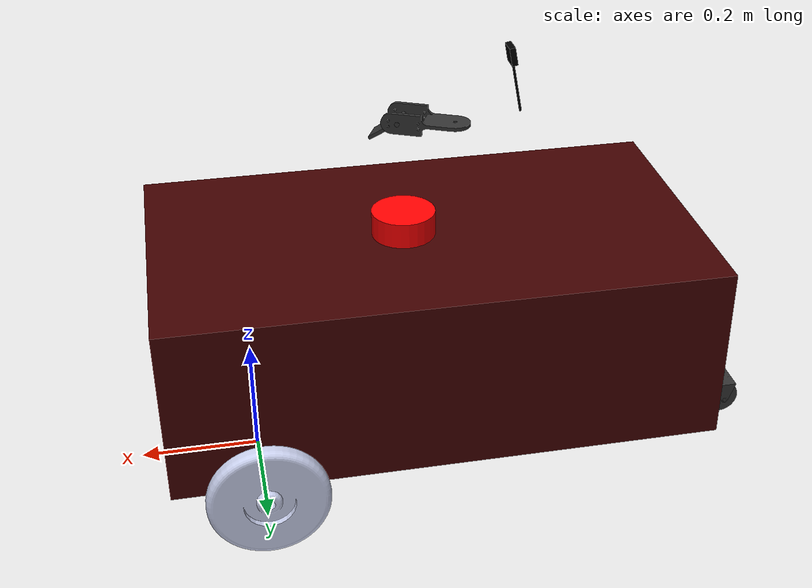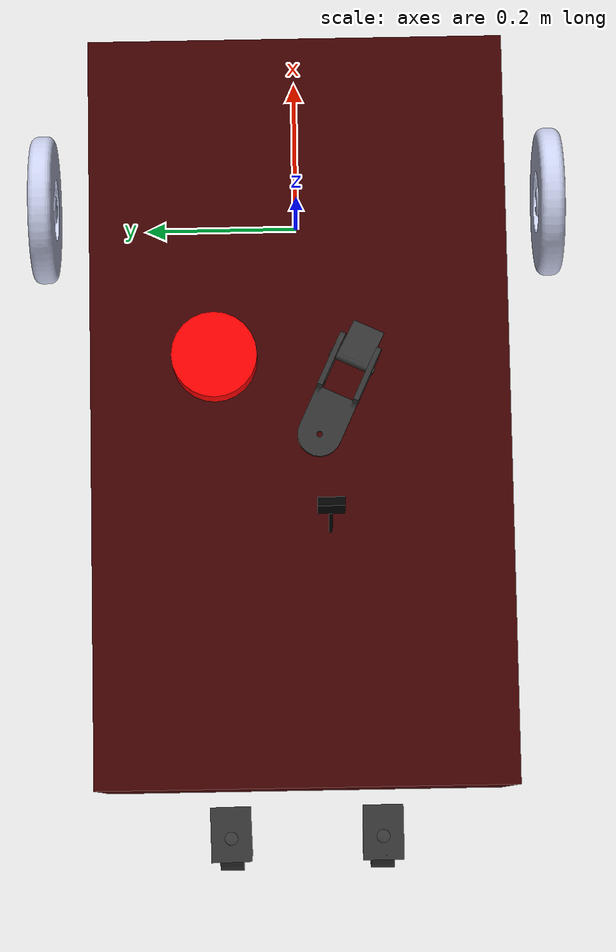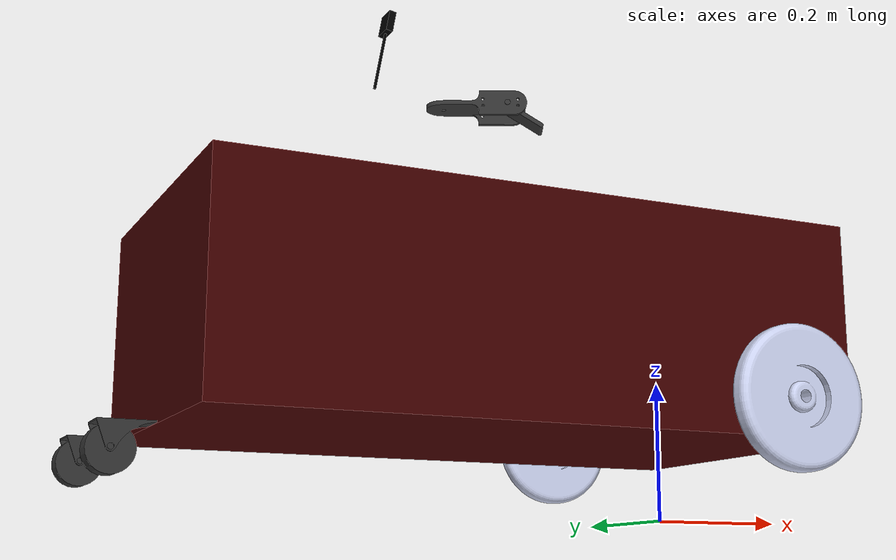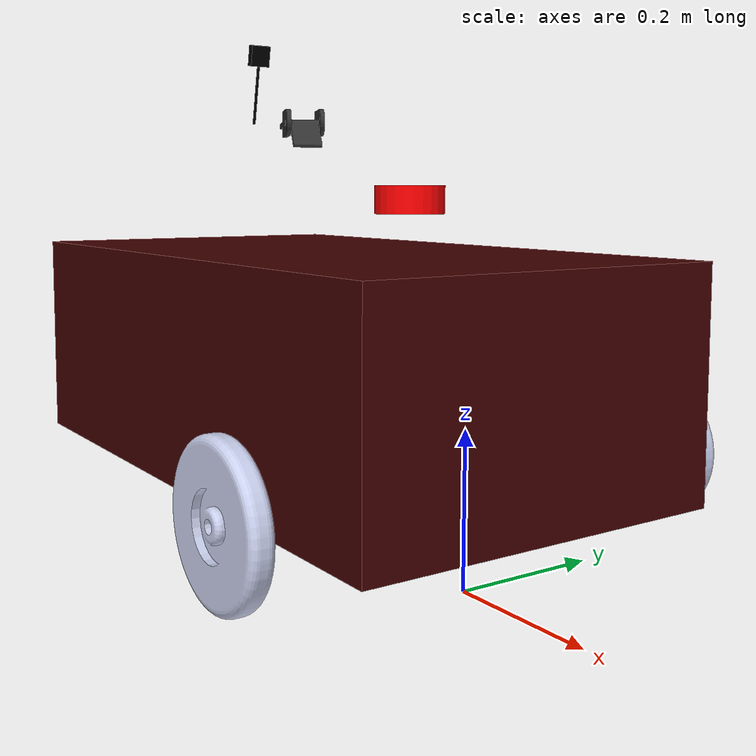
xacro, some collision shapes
<?xml version="1.0"?>
<robot xmlns:xacro="http://www.ros.org/wiki/xacro" name="fire_robot">
   <xacro:arg name="use_ros2_control" default="true"/>
   <xacro:include filename="robot_core.xacro" />

    <!-- Switch between ros2_control and Gazebo integrated diff-drive control -->
    <xacro:if value="$(arg use_ros2_control)">
        <xacro:include filename="ros2_control.xacro" />
    </xacro:if>
    <xacro:unless value="$(arg use_ros2_control)">
        <xacro:include filename="gazebo_control.xacro" />
    </xacro:unless>

   <xacro:include filename="lidar.xacro" />
   <xacro:include filename="camera.xacro" />

</robot>

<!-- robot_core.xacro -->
<robot xmlns:xacro="http://www.ros.org/wiki/xacro">

   <xacro:include filename="inertial_macros.xacro"/>

    <!-- ===== MATERIALS ===== -->

    <material name="dark_red">
        <color rgba="0.250980392156863 0 0 1"/>
    </material>

    <material name="dark_grey">
        <color rgba="0.2 0.2 0.2 1"/>
    </material>

    <material name="silver">
        <color rgba="0.776470588235294 0.756862745098039 0.737254901960784 1"/>
    </material>

    <material name="red">
        <color rgba="1 0 0 1"/>
    </material>

    <material name="black">
        <color rgba="0.0 0.0 0.0 1"/>
    </material>

    <!-- BASE LINK -->

    <link name="base_link">

    </link>

        <!-- BASE_FOOTPRINT -->

    <joint name="base_footprint_joint" type="fixed">
        <parent link="base_link"/>
        <child link="base_footprint"/>
        <origin xyz="0 0 0" rpy="0 0 0"/>
    </joint>

    <link name="base_footprint">
    </link>
    <!-- chassis: the actual physical body -->

    <joint name="chassis_joint" type="fixed">
        <parent link="base_link"/>
        <child link="chasses_link"/>
        <origin xyz="-0.45 0 0.1" rpy="0 0 0"/>   <!-- adjust if needed -->
    </joint>

   <link
    name="chasses_link">
    <inertial>
      <origin
        xyz="0.014655 0.044421 0.1607"
        rpy="0 0 0" />
      <mass
        value="33.539" />
      <inertia
        ixx="1.2155"
        ixy="0.012793"
        ixz="0.03844"
        iyy="1.7301"
        iyz="-0.0057582"
        izz="2.2118" />
    </inertial>
    <visual>
      <origin
        xyz="0 0 0"
        rpy="0 0 0" />
      <geometry>
        <mesh
          filename="package://fire_robot/description/meshes/chasses_link.STL" />
      </geometry>
      <material
        name="">
        <color
          rgba="0.250980392156863 0 0 1" />
      </material>
    </visual>
    <collision>
      <origin xyz="0.15 0 0.15" rpy="0 0 0"/>
      <geometry>
        <box size="0.9 0.5 0.3"/>
      </geometry>
    </collision>
  </link>

   <link
    name="LF_Wheel_Link">
    <inertial>
      <origin
        xyz="0 -0.017 0"
        rpy="0 0 0" />
      <mass
        value="0.6852" />
      <inertia
        ixx="0.0017472"
        ixy="-3.8027E-19"
        ixz="1.0983E-19"
        iyy="0.0033941"
        iyz="-4.3413E-19"
        izz="0.0017472" />
    </inertial>
    <visual>
      <origin
        xyz="0 0 0"
        rpy="0 0 0" />
      <geometry>
        <mesh
          filename="package://fire_robot/description/meshes/LF_Wheel_Link.STL" />
      </geometry>
      <material
        name="">
        <color
          rgba="0.79216 0.81961 0.93333 1" />
      </material>
    </visual>
    <collision>
      <origin xyz="0 0 0" rpy="${pi/2} 0 0"/>
      <geometry>
       <cylinder radius="0.095" length="0.05"/>
      </geometry>
    </collision>
  </link>

  <joint
    name="LF_joint"
    type="continuous">
    <origin
      xyz="0.45142 0.3425 0.04"
      rpy="0 0 0" />
    <parent
      link="chasses_link" />
    <child
      link="LF_Wheel_Link" />
    <axis
      xyz="0 1 0" />

    <limit effort="10.0" velocity="10.0"/>

  </joint>

  <link
    name="RF_Wheel_Link">
    <inertial>
      <origin
        xyz="-5.5511E-17 0.017 5.5511E-17"
        rpy="0 0 0" />
      <mass
        value="0.6852" />
      <inertia
        ixx="0.0017472"
        ixy="-1.1225E-19"
        ixz="8.9463E-20"
        iyy="0.0033941"
        iyz="-3.5867E-19"
        izz="0.0017472" />
    </inertial>
    <visual>
      <origin
        xyz="0 0 0"
        rpy="0 0 0" />
      <geometry>
        <mesh
          filename="package://fire_robot/description/meshes/RF_Wheel_Link.STL" />
      </geometry>
      <material
        name="">
        <color
          rgba="0.79216 0.81961 0.93333 1" />
      </material>
    </visual>
    <collision>
      <origin xyz="0 0 0" rpy="${pi/2} 0 0"/>
      <geometry>
       <cylinder radius="0.095" length="0.05"/>
      </geometry>
    </collision>
  </link>

  <joint
    name="RF_Wheel_joint"
    type="continuous">
    <origin
      xyz="0.45142 -0.3425 0.04"
      rpy="0 0 0" />
    <parent
      link="chasses_link" />
    <child
      link="RF_Wheel_Link" />
    <axis
      xyz="0 1 0" />
  <limit effort="10.0"
         velocity="10.0"/>
  </joint>

  <link
    name="RC_Link">
    <inertial>
      <origin
        xyz="0.0011142 9.6089E-05 -0.0040799"
        rpy="0 0 0" />
      <mass
        value="0.070329" />
      <inertia
        ixx="3.2762E-05"
        ixy="9.6444E-08"
        ixz="-3.6413E-06"
        iyy="3.1652E-05"
        iyz="-3.1401E-07"
        izz="5.4956E-05" />
    </inertial>
    <visual>
      <origin
        xyz="0 0 0"
        rpy="0 0 0" />
      <geometry>
        <mesh
          filename="package://fire_robot/description/meshes/RC_Link.STL" />
      </geometry>
      <material
        name="">
        <color
          rgba="0.2 0.2 0.2 1" />
      </material>
    </visual>
  <collision>
      <origin xyz="0 0 0" rpy="0 0 0"/>
      <geometry>
        <box size="0.05 0.05 0.05"/>
      </geometry>
    </collision>
  </link>

  <joint
    name="RC_joint"
    type="continuous">
    <origin
      xyz="-0.35902 -0.097 -0.0095"
      rpy="0 0 -0.085" />
    <parent
      link="chasses_link" />
    <child
      link="RC_Link" />
    <axis
    xyz="0 0 1" />
    <limit effort="0.05" velocity="10.0"/>
  </joint>

  <link
    name="LC_Link">
    <inertial>
      <origin
        xyz="0.0010264 -0.00044407 -0.0040799"
        rpy="0 0 0" />
      <mass
        value="0.070329" />
      <inertia
        ixx="3.2593E-05"
        ixy="-4.1058E-07"
        ixz="-3.3543E-06"
        iyy="3.1822E-05"
        iyz="1.4512E-06"
        izz="5.4956E-05" />
    </inertial>
    <visual>
      <origin
        xyz="0 0 0"
        rpy="0 0 0" />
      <geometry>
        <mesh
          filename="package://fire_robot/description/meshes/LC_Link.STL" />
      </geometry>
      <material
        name="">
        <color
          rgba="0.2 0.2 0.2 1" />
      </material>
    </visual>
   <collision>
      <origin xyz="0 0 0" rpy="0 0 0"/>
      <geometry>
        <box size="0.05 0.05 0.05"/>
      </geometry>
    </collision>
  </link>

  <joint
    name="LC_joint"
    type="continuous">
    <origin
      xyz="-0.35902 0.097 -0.0095"
      rpy="0 0 0.425" />
    <parent
      link="chasses_link" />
    <child
      link="LC_Link" />
    <axis
      xyz="0 0 1" />
    <limit effort="0.05" velocity="10.0"/>
    </joint>

  <link
    name="Arm_Link">
    <inertial>
      <origin
        xyz="0.047173 -0.021885 -0.003"
        rpy="0 0 0" />
      <mass
        value="0.33173" />
      <inertia
        ixx="0.00020256"
        ixy="0.00014004"
        ixz="9.4861E-19"
        iyy="0.00043945"
        iyz="-2.645E-19"
        izz="0.0006045" />
    </inertial>
    <visual>
      <origin
        xyz="0 0 0"
        rpy="0 0 0" />
      <geometry>
        <mesh
          filename="package://fire_robot/description/meshes/Arm_Link.STL" />
      </geometry>
      <material
        name="">
        <color
          rgba="0.2 0.2 0.2 1" />
      </material>
    </visual>
    <collision>
      <origin xyz="0.05 -0.02 0" rpy="0 0 0"/>
      <geometry>
        <box size="0.15 0.05 0.03"/>
      </geometry>
    </collision>
  </link>

  <joint
    name="Arm_joint"
    type="revolute">
    <origin
      xyz="0.092398 -0.02 0.476"
      rpy="0 0 0" />
    <parent
      link="chasses_link" />
    <child
      link="Arm_Link" />
    <axis
      xyz="0 0 -1" />
    <limit
      lower="-1.57"
      upper="1.57"
      effort="5.0"
      velocity="10" />
  </joint>

  <link
    name="Nozel_Link">
    <inertial>
      <origin
        xyz="0.0083525 -0.033639 -0.01418"
        rpy="0 0 0" />
      <mass
        value="0.10805" />
      <inertia
        ixx="2.889E-05"
        ixy="4.7007E-06"
        ixz="1.5916E-05"
        iyy="3.6841E-05"
        iyz="-7.3841E-06"
        izz="4.2155E-05" />
    </inertial>
    <visual>
      <origin
        xyz="0 0 0"
        rpy="0 0 0" />
      <geometry>
        <mesh
          filename="package://fire_robot/description/meshes/Nozel_Link.STL" />
      </geometry>
      <material
        name="">
        <color
          rgba="0.2 0.2 0.2 1" />
      </material>
    </visual>
    <collision>
      <origin xyz="0 -0.03 -0.01" rpy="0 0 0"/>
      <geometry>
        <box size="0.05 0.08 0.05"/>
      </geometry>
    </collision>
  </link>

  <joint
    name="Nozel_joint"
    type="revolute">
    <origin
      xyz="0.093005 -0.013384 -0.003"
      rpy="0 0 0" />
    <parent
      link="Arm_Link" />
    <child
      link="Nozel_Link" />
    <axis
      xyz="-0.42085 -0.90713 0" />
    <limit
      lower="-1.57"
      upper="1.57"
      effort="5.0"
      velocity="10" />
  </joint>

      <joint name="LC_wheel_joint" type="continuous">
        <parent link="LC_Link"/>
        <child link="LC_wheel"/>
        <origin xyz="-0.01 0.004 -0.031" rpy="-${pi/2} 0 -0.425" />
        <axis xyz="0 0 1"/>
    </joint>

    <link name="LC_wheel">
        <visual>
            <geometry>
                <cylinder radius="0.03" length="0.03"/>
            </geometry>
            <material name="dark_grey"/>
        </visual>
        <collision>
            <geometry>
                <cylinder radius="0.03" length="0.03"/>
            </geometry>
        </collision>
        <xacro:inertial_cylinder mass="0.1" length="0.04" radius="0.05">
            <origin xyz="0 0 0" rpy="0 0 0"/>
        </xacro:inertial_cylinder>
    </link>

<joint name="RC_wheel_joint" type="continuous">
        <parent link="RC_Link"/>
        <child link="RC_wheel"/>
        <origin xyz="-0.01 0 -0.031" rpy="-${pi/2} 0 0.085" />
        <axis xyz="0 0 1"/>
    </joint>

    <link name="RC_wheel">
        <visual>
            <geometry>
                <cylinder radius="0.03" length="0.03"/>
            </geometry>
            <material name="dark_grey"/>
        </visual>
        <collision>
            <geometry>
                <cylinder radius="0.03" length="0.03"/>
            </geometry>
        </collision>
        <xacro:inertial_cylinder mass="0.1" length="0.04" radius="0.05">
            <origin xyz="0 0 0" rpy="0 0 0"/>
        </xacro:inertial_cylinder>
    </link>

    <gazebo reference="RC_wheel">
        <mu1 value="0.001"/>
        <mu2 value="0.001"/>
    </gazebo>

    <gazebo reference="LC_wheel">
        <mu1 value="0.001"/>
        <mu2 value="0.001"/>
    </gazebo>

</robot>

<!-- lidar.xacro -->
<robot xmlns:xacro="http://www.ros.org/wiki/xacro" >

    <joint name="laser_joint" type="fixed">
        <parent link="chasses_link"/>
        <child link="laser_frame"/>
        <origin xyz="0.2 0.1 0.37" rpy="0 0 0"/>
    </joint>

    <link name="laser_frame">
        <visual>
            <geometry>
                <cylinder radius="0.05" length="0.04"/>
            </geometry>
            <material name="red"/>
        </visual>
        <collision>
            <geometry>
                <cylinder radius="0.05" length="0.04"/>
            </geometry>
        </collision>
        <xacro:inertial_cylinder mass="0.1" length="0.04" radius="0.05">
            <origin xyz="0 0 0" rpy="0 0 0"/>
        </xacro:inertial_cylinder>
    </link>

      <gazebo reference="laser_frame">
        <material>Gazebo/Black</material>

        <sensor name="laser" type="gpu_lidar">
            <pose> 0 0 0 0 0 0 </pose>
            <visualize>false</visualize>
            <update_rate>10</update_rate>
            <lidar>
                <scan>
                    <horizontal>
                        <samples>360</samples>
                        <min_angle>-3.14</min_angle>
                        <max_angle>3.14</max_angle>
                    </horizontal>
                </scan>
                <range>
                    <min>0.3</min>
                    <max>12</max>
                </range>
            </lidar>
            <topic>scan</topic>
            <gz_frame_id>laser_frame</gz_frame_id>
        </sensor>
    </gazebo>

</robot>

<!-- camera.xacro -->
<robot xmlns:xacro="http://www.ros.org/wiki/xacro" >

    <joint name="camera_joint" type="fixed">
        <parent link="chasses_link"/>
        <child link="camera_link"/>
        <origin xyz="0 -0.03 0.58" rpy="0 0.18 0"/>
    </joint>

    <link name="camera_link">
        <visual>
            <geometry>
                <box size="0.010 0.03 0.03"/>
            </geometry>
            <material name="black"/>
        </visual>
        <visual>
            <origin xyz="0 0 -0.05"/>
            <geometry>
                <cylinder radius="0.002" length="0.1"/>
            </geometry>
            <material name="black"/>
        </visual>
    </link>

    <joint name="camera_optical_joint" type="fixed">
        <parent link="camera_link"/>
        <child link="camera_link_optical"/>
        <origin xyz="0 0 0" rpy="${-pi/2} 0 ${-pi/2}"/>
    </joint>

    <link name="camera_link_optical"></link>

    <gazebo reference="camera_link">
        <material>Gazebo/Black</material>

        <sensor name="camera" type="camera">
            <pose> 0 0 0 0 0 0 </pose>
            <visualize>true</visualize>
            <update_rate>10</update_rate>
            <camera>
                <camera_info_topic>camera/camera_info</camera_info_topic>
                <horizontal_fov>1.089</horizontal_fov>
                <image>
                    <format>R8G8B8</format>
                    <width>640</width>
                    <height>480</height>
                </image>
                <clip>
                    <near>0.05</near>
                    <far>8.0</far>
                </clip>
            </camera>
            <topic>camera/image_raw</topic>
            <gz_frame_id>camera_link_optical</gz_frame_id>
        </sensor>
    </gazebo>

</robot>
